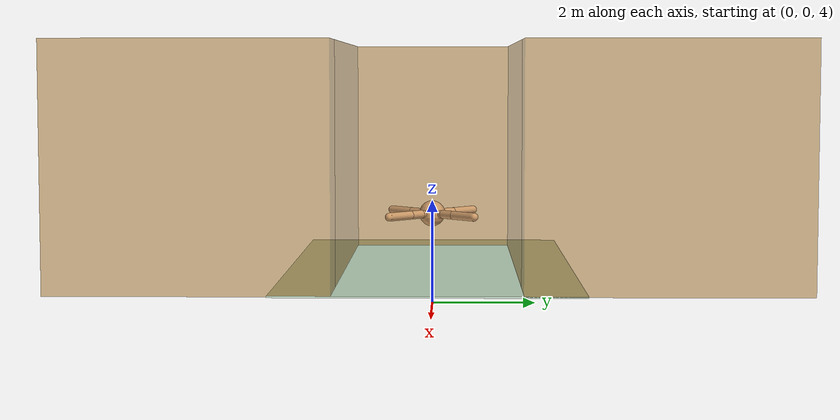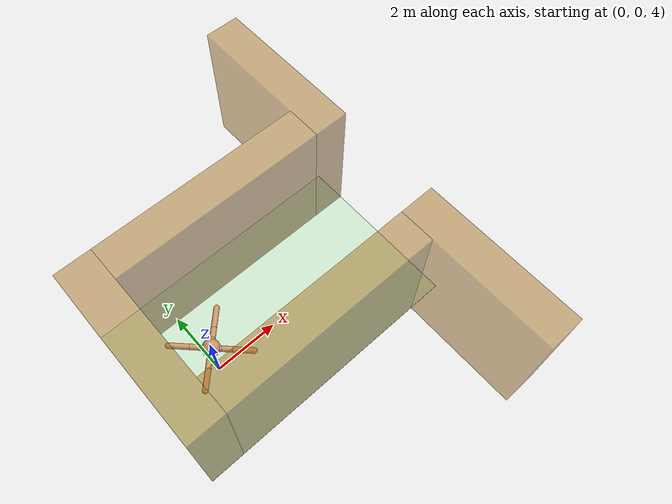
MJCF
<mujoco model="ant">
  <compiler angle="degree" coordinate="local" inertiafromgeom="true"/>
  <option integrator="RK4" timestep="0.01"/>
  <custom>
    <numeric data="0.0 0.0 0.55 1.0 0.0 0.0 0.0 0.0 1.0 0.0 -1.0 0.0 -1.0 0.0 1.0" name="init_qpos"/>
  </custom>
  <default>
    <joint armature="1" damping="1" limited="true"/>
    <geom conaffinity="0" condim="3" density="5.0" friction="1 0.5 0.5" margin="0.01" rgba="0.8 0.6 0.4 1"/>
    <default class="wall_start">
        <geom conaffinity="1" condim="3" density="5.0" friction="1 0.5 0.5" margin="0.01" type="box" rgba="0.630 0.411 0.0819 0.5" />
    </default>
    <default class="wall">
        <geom conaffinity="1" condim="3" density="5.0" friction="1 0.5 0.5" margin="0.01" type="box" rgba=".2 .3 .4 0.5" />
    </default>
    <default class="floor">
        <geom type="box" material="MatPlane" conaffinity="1" condim="3" group="2" rgba="0.8 0.9 0.8 1" />
    </default>
      <default class="floor_start">
        <geom type="box" material="MatPlane_start" conaffinity="1" condim="3" group="2" rgba="0.8 0.9 0.8 1" />
    </default>
  </default>
  <asset>
    <texture builtin="gradient" height="100" rgb1=".4 .5 .6" rgb2="0 0 0" type="skybox" width="100"/>
    <texture builtin="flat" height="1278" mark="cross" markrgb="1 1 1" name="texgeom" random="0.01" rgb1="0.8 0.6 0.4" rgb2="0.8 0.6 0.4" type="cube" width="127"/>
    <texture name="texplane" type="2d" builtin="checker" rgb1=".2 .3 .4" rgb2=".1 0.15 0.2" width="100" height="100"></texture>
    <texture name="texplane_start" type="2d" builtin="checker" rgb1="0.630 0.411 0.0819" rgb2="0.315 0.205 0.041" width="100" height="100"></texture>
    <material name="MatPlane" reflectance="0.5" texture="texplane" texrepeat="1 1" texuniform="true"></material>
    <material name="MatPlane_start" reflectance="0.5" texture="texplane_start" texrepeat="1 1" texuniform="true"></material>
    <material name="geom" texture="texgeom" texuniform="true"/>
  </asset>
  <worldbody>
    <light cutoff="100" diffuse="1 1 1" dir="-0 0 -1.3" directional="true" exponent="1" pos="0 0 1.3" specular=".1 .1 .1"/>
    <geom name="floor" pos="0 0 0" size="200 200 0.125" type="plane"  conaffinity="1" condim="3" group="2" rgba="0.0 0.0 0.0 0.0"></geom>

    <body name="start_tunnel">
      <geom class="wall_start" size="3 0.5 2" pos="2 -2 7"/>
      <geom class="wall_start" size="0.5 2.5 2" pos="-1.5 0 7"/>
      <geom class="wall_start" size="3 0.5 2" pos="2 2 7"/>
      <geom class="wall_start" size="0.5 2.25 2" pos="5.5 -3.75 7" />
      <geom class="wall_start" size="0.5 2.25 2" pos="5.5 3.75 7" />
      <geom class="floor_start" size="4 2.5 0.0125" pos="2 0 5" />
    </body>

    <body name="segments">
    </body>

    <body name="torso" pos="0 0 5.75">
      <camera name="track" mode="trackcom" pos="0 -3 0.3" xyaxes="1 0 0 0 0 1"/>
      <geom name="torso_geom" pos="0 0 0" size="0.25" type="sphere"/>
      <joint armature="0" damping="0" limited="false" margin="0.01" name="root" pos="0 0 0" type="free"/>
      <body name="front_left_leg" pos="0 0 0">
        <geom fromto="0.0 0.0 0.0 0.2 0.2 0.0" name="aux_1_geom" size="0.08" type="capsule"/>
        <body name="aux_1" pos="0.2 0.2 0">
          <joint axis="0 0 1" name="hip_1" pos="0.0 0.0 0.0" range="-30 30" type="hinge"/>
          <geom fromto="0.0 0.0 0.0 0.2 0.2 0.0" name="left_leg_geom" size="0.08" type="capsule"/>
          <body pos="0.2 0.2 0">
            <joint axis="-1 1 0" name="ankle_1" pos="0.0 0.0 0.0" range="30 70" type="hinge"/>
            <geom fromto="0.0 0.0 0.0 0.4 0.4 0.0" name="left_ankle_geom" size="0.08" type="capsule"/>
          </body>
        </body>
      </body>
      <body name="front_right_leg" pos="0 0 0">
        <geom fromto="0.0 0.0 0.0 -0.2 0.2 0.0" name="aux_2_geom" size="0.08" type="capsule"/>
        <body name="aux_2" pos="-0.2 0.2 0">
          <joint axis="0 0 1" name="hip_2" pos="0.0 0.0 0.0" range="-30 30" type="hinge"/>
          <geom fromto="0.0 0.0 0.0 -0.2 0.2 0.0" name="right_leg_geom" size="0.08" type="capsule"/>
          <body pos="-0.2 0.2 0">
            <joint axis="1 1 0" name="ankle_2" pos="0.0 0.0 0.0" range="-70 -30" type="hinge"/>
            <geom fromto="0.0 0.0 0.0 -0.4 0.4 0.0" name="right_ankle_geom" size="0.08" type="capsule"/>
          </body>
        </body>
      </body>
      <body name="back_leg" pos="0 0 0">
        <geom fromto="0.0 0.0 0.0 -0.2 -0.2 0.0" name="aux_3_geom" size="0.08" type="capsule"/>
        <body name="aux_3" pos="-0.2 -0.2 0">
          <joint axis="0 0 1" name="hip_3" pos="0.0 0.0 0.0" range="-30 30" type="hinge"/>
          <geom fromto="0.0 0.0 0.0 -0.2 -0.2 0.0" name="back_leg_geom" size="0.08" type="capsule"/>
          <body pos="-0.2 -0.2 0">
            <joint axis="-1 1 0" name="ankle_3" pos="0.0 0.0 0.0" range="-70 -30" type="hinge"/>
            <geom fromto="0.0 0.0 0.0 -0.4 -0.4 0.0" name="third_ankle_geom" size="0.08" type="capsule"/>
          </body>
        </body>
      </body>
      <body name="right_back_leg" pos="0 0 0">
        <geom fromto="0.0 0.0 0.0 0.2 -0.2 0.0" name="aux_4_geom" size="0.08" type="capsule"/>
        <body name="aux_4" pos="0.2 -0.2 0">
          <joint axis="0 0 1" name="hip_4" pos="0.0 0.0 0.0" range="-30 30" type="hinge"/>
          <geom fromto="0.0 0.0 0.0 0.2 -0.2 0.0" name="rightback_leg_geom" size="0.08" type="capsule"/>
          <body pos="0.2 -0.2 0">
            <joint axis="1 1 0" name="ankle_4" pos="0.0 0.0 0.0" range="30 70" type="hinge"/>
            <geom fromto="0.0 0.0 0.0 0.4 -0.4 0.0" name="fourth_ankle_geom" size="0.08" type="capsule"/>
          </body>
        </body>
      </body>
    </body>
  </worldbody>
  <actuator>
    <motor ctrllimited="true" ctrlrange="-1.0 1.0" joint="hip_4" gear="150"/>
    <motor ctrllimited="true" ctrlrange="-1.0 1.0" joint="ankle_4" gear="150"/>
    <motor ctrllimited="true" ctrlrange="-1.0 1.0" joint="hip_1" gear="150"/>
    <motor ctrllimited="true" ctrlrange="-1.0 1.0" joint="ankle_1" gear="150"/>
    <motor ctrllimited="true" ctrlrange="-1.0 1.0" joint="hip_2" gear="150"/>
    <motor ctrllimited="true" ctrlrange="-1.0 1.0" joint="ankle_2" gear="150"/>
    <motor ctrllimited="true" ctrlrange="-1.0 1.0" joint="hip_3" gear="150"/>
    <motor ctrllimited="true" ctrlrange="-1.0 1.0" joint="ankle_3" gear="150"/>
  </actuator>
</mujoco>
